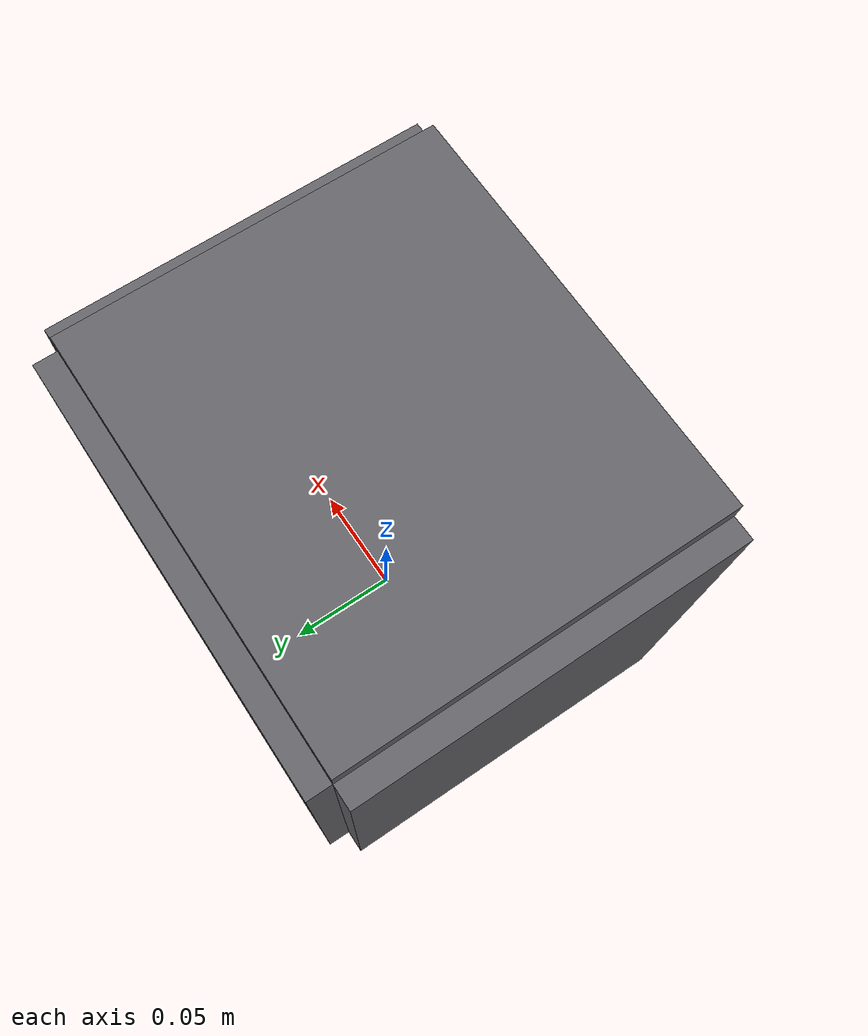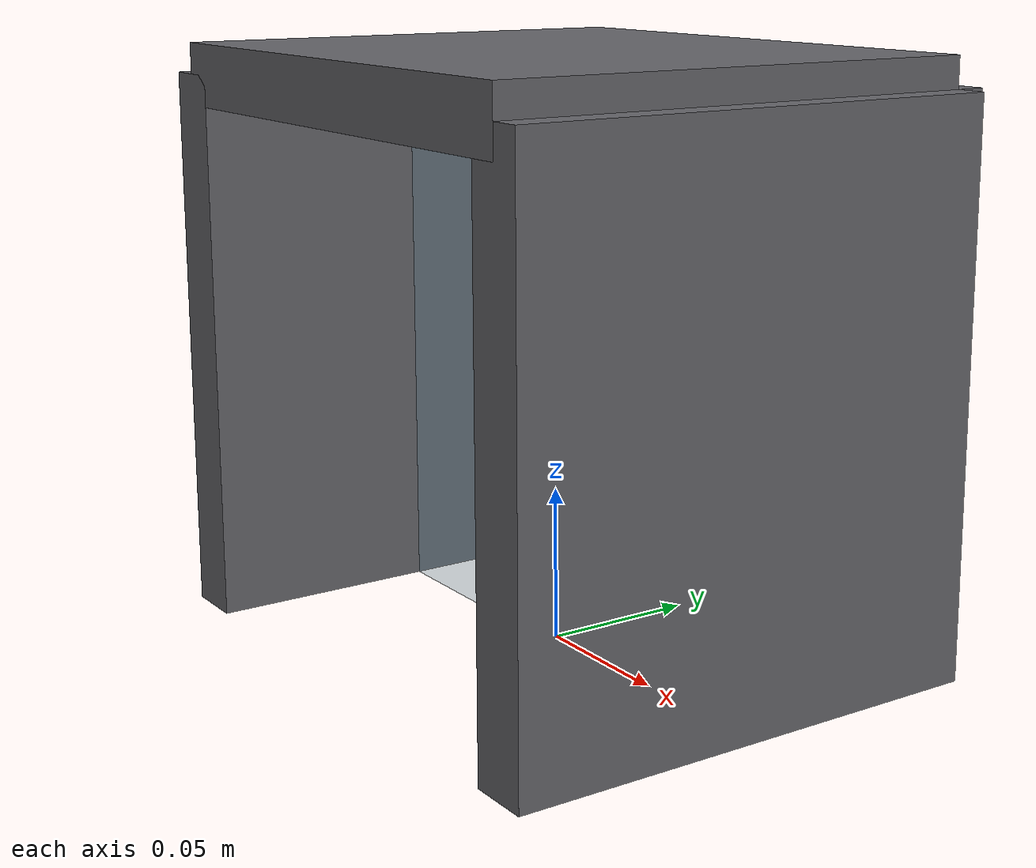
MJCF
<?xml version="1.0" encoding="utf-8"?>
<mujoco model="colorfastness_tester">
  <compiler angle="radian" autolimits="true"/>
  <default>
    <default class="body"><geom contype="1" conaffinity="1"/></default>
  </default>
  <worldbody>
    <body name="base">
      <geom type="box" size="0.09 0.01 0.09" pos="0 0.08 0.09" rgba="0.4 0.4 0.42 1" class="body"/>
      <geom type="box" size="0.01 0.08 0.09" pos="-0.09 0 0.09" rgba="0.4 0.4 0.42 1" class="body"/>
      <geom type="box" size="0.01 0.08 0.09" pos="0.09 0 0.09" rgba="0.4 0.4 0.42 1" class="body"/>
      <geom type="box" size="0.09 0.08 0.01" pos="0 0 0.18" rgba="0.4 0.4 0.42 1" class="body"/>
      <body name="door" pos="-0.09 0.0 0.09">
        <joint name="door_joint" type="hinge" axis="0 0 1" range="0 1.8" damping="0.6" frictionloss="0.3"/>
  <geom type="box" size="0.09 0.005 0.09" pos="0.09 0 0" rgba="0.6 0.8 0.9 0.35" class="body"/>
      </body>
    </body>
  </worldbody>
</mujoco>
